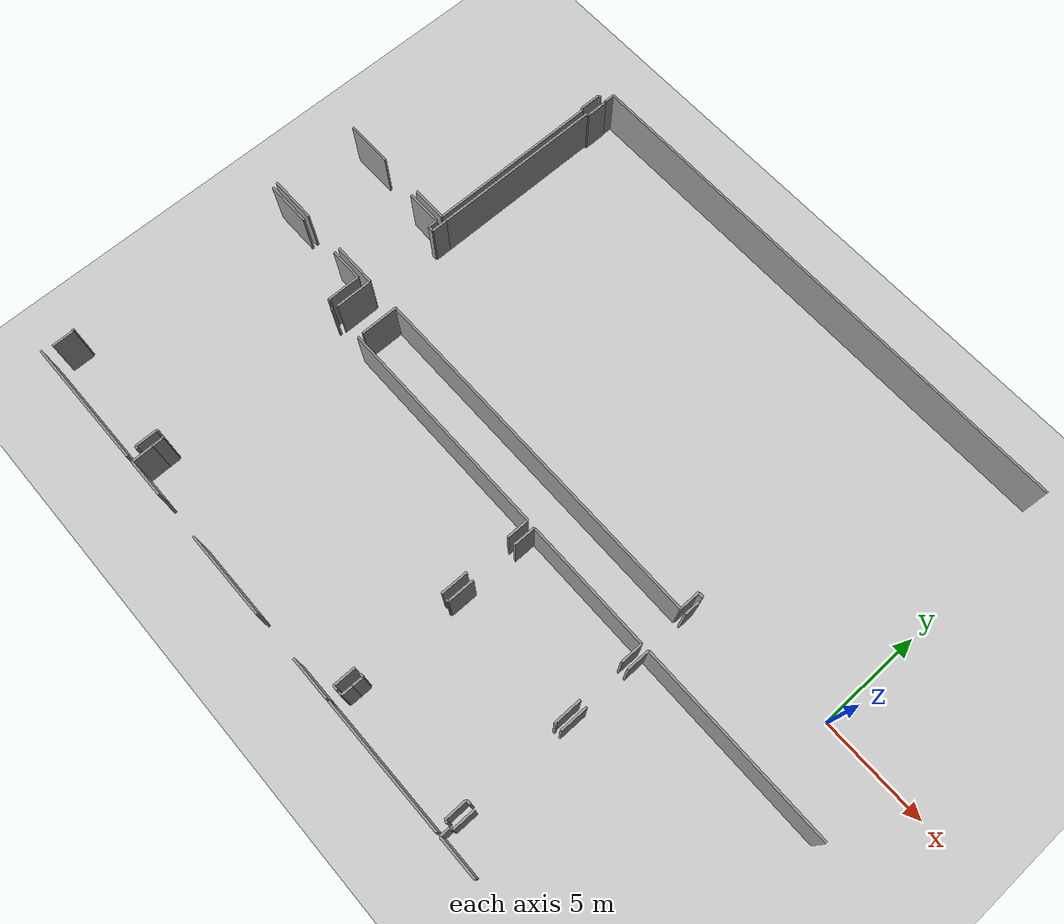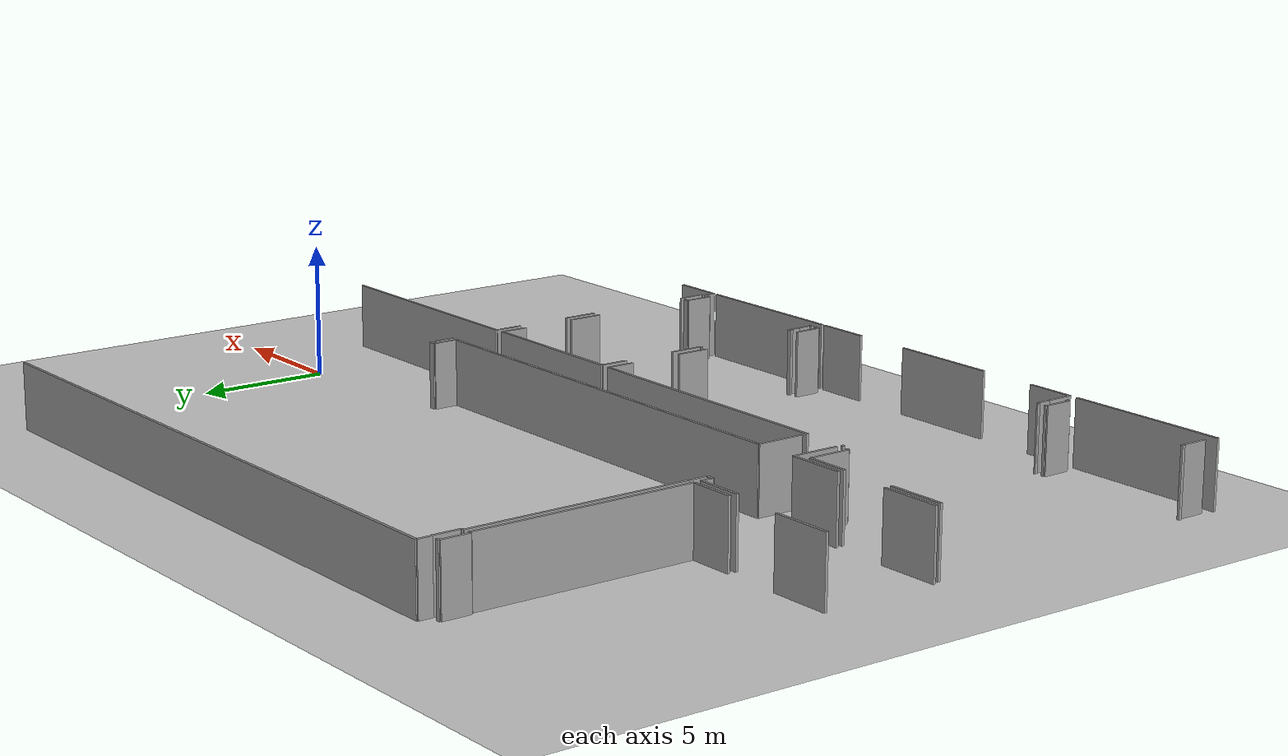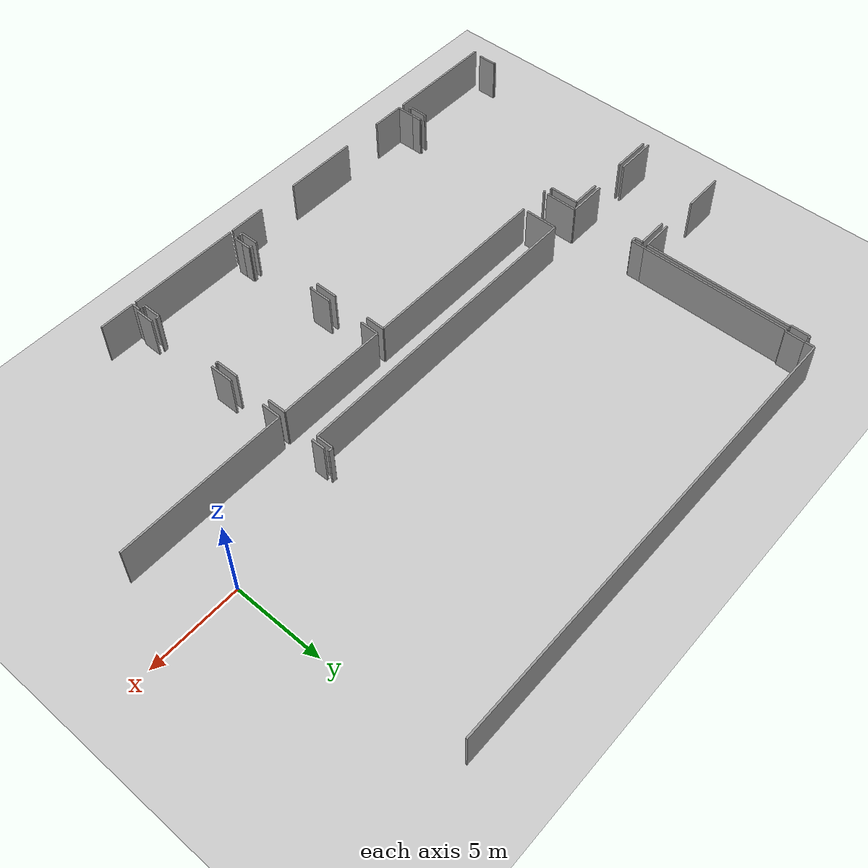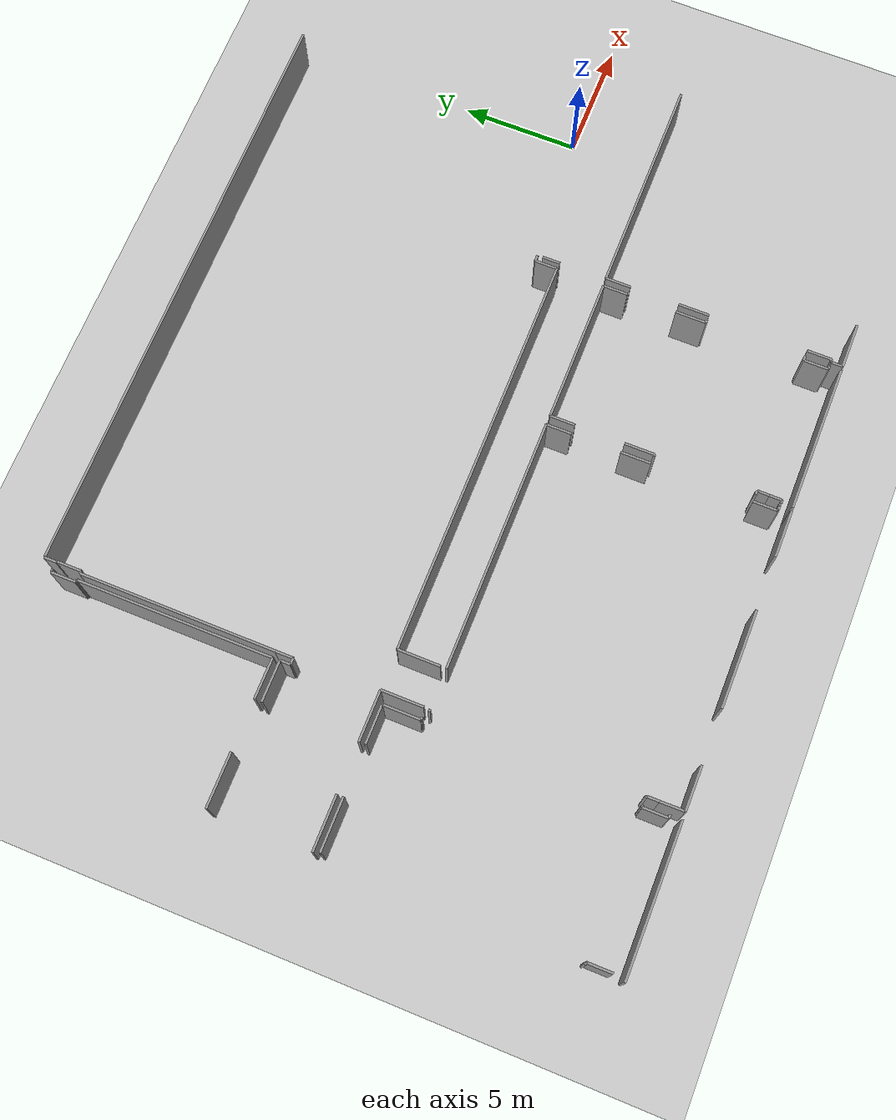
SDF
<sdf version="1.6">
 <world name="default">
  <model name="ground_plane">
   <static>1</static>
   <link name="link">
    <collision name="collision">
     <geometry><plane><normal>0 0 1</normal><size>100 100</size></plane></geometry>
     <surface><friction><ode><mu>100</mu><mu2>50</mu2></ode></friction></surface>
    </collision>
    <visual name="visual">
     <cast_shadows>0</cast_shadows>
     <geometry><plane><normal>0 0 1</normal><size>100 100</size></plane></geometry>
     <material>
      <script><uri>file://media/materials/scripts/gazebo.material</uri><name>Gazebo/Grey</name></script>
     </material>
    </visual>
   </link>
  </model>
  <model name="0510040942_A-40">
   <static>1</static>
   <link name="Wall_59">
    <collision name="Wall_59_Collision">
     <geometry><box><size>0.143116332771 0.1 2.5</size></box></geometry>
     <pose>0.0715581663854 0 1.25 0 0 0</pose>
    </collision>
    <visual name="Wall_59_Visual">
     <pose>0.0715581663854 0 1.25 0 0 0</pose>
     <geometry><box><size>0.143116332771 0.1 2.5</size></box></geometry>
     <material>
      <script><uri>file://media/materials/scripts/gazebo.material</uri><name>Gazebo/Grey</name></script>
      <ambient>1 1 1 1</ambient>
     </material>
    </visual>
    <pose>32.2800918584 -0.519050458657 0 0 0 3.14159265359</pose>
   </link>
   <link name="Wall_60">
    <collision name="Wall_60_Collision">
     <geometry><box><size>1.07705190505 0.1 2.5</size></box></geometry>
     <pose>0.538525952523 0 1.25 0 0 0</pose>
    </collision>
    <visual name="Wall_60_Visual">
     <pose>0.538525952523 0 1.25 0 0 0</pose>
     <geometry><box><size>1.07705190505 0.1 2.5</size></box></geometry>
     <material>
      <script><uri>file://media/materials/scripts/gazebo.material</uri><name>Gazebo/Grey</name></script>
      <ambient>1 1 1 1</ambient>
     </material>
    </visual>
    <pose>32.1369755256 -0.519050458657 0 0 0 -1.57079632679</pose>
   </link>
   <link name="Wall_61">
    <collision name="Wall_61_Collision">
     <geometry><box><size>0.0955377646954 0.1 2.5</size></box></geometry>
     <pose>0.0477688823477 0 1.25 0 0 0</pose>
    </collision>
    <visual name="Wall_61_Visual">
     <pose>0.0477688823477 0 1.25 0 0 0</pose>
     <geometry><box><size>0.0955377646954 0.1 2.5</size></box></geometry>
     <material>
      <script><uri>file://media/materials/scripts/gazebo.material</uri><name>Gazebo/Grey</name></script>
      <ambient>1 1 1 1</ambient>
     </material>
    </visual>
    <pose>32.1369755256 -1.5961023637 0 0 0 0.0</pose>
   </link>
   <link name="Wall_62">
    <collision name="Wall_62_Collision">
     <geometry><box><size>8.37141733382 0.1 2.5</size></box></geometry>
     <pose>4.18570866691 0 1.25 0 0 0</pose>
    </collision>
    <visual name="Wall_62_Visual">
     <pose>4.18570866691 0 1.25 0 0 0</pose>
     <geometry><box><size>8.37141733382 0.1 2.5</size></box></geometry>
     <material>
      <script><uri>file://media/materials/scripts/gazebo.material</uri><name>Gazebo/Grey</name></script>
      <ambient>1 1 1 1</ambient>
     </material>
    </visual>
    <pose>32.2325132903 -1.5961023637 0 0 0 -1.57079632679</pose>
   </link>
   <link name="Wall_63">
    <collision name="Wall_63_Collision">
     <geometry><box><size>1.72868797341 0.1 2.5</size></box></geometry>
     <pose>0.864343986703 0 1.25 0 0 0</pose>
    </collision>
    <visual name="Wall_63_Visual">
     <pose>0.864343986703 0 1.25 0 0 0</pose>
     <geometry><box><size>1.72868797341 0.1 2.5</size></box></geometry>
     <material>
      <script><uri>file://media/materials/scripts/gazebo.material</uri><name>Gazebo/Grey</name></script>
      <ambient>1 1 1 1</ambient>
     </material>
    </visual>
    <pose>32.2325132903 -9.96751969753 0 0 0 3.14159265359</pose>
   </link>
   <link name="Wall_64">
    <collision name="Wall_64_Collision">
     <geometry><box><size>2.30470618681 0.1 2.5</size></box></geometry>
     <pose>1.1523530934 0 1.25 0 0 0</pose>
    </collision>
    <visual name="Wall_64_Visual">
     <pose>1.1523530934 0 1.25 0 0 0</pose>
     <geometry><box><size>2.30470618681 0.1 2.5</size></box></geometry>
     <material>
      <script><uri>file://media/materials/scripts/gazebo.material</uri><name>Gazebo/Grey</name></script>
      <ambient>1 1 1 1</ambient>
     </material>
    </visual>
    <pose>28.3348769935 -9.96751969753 0 0 0 -3.14104214442</pose>
   </link>
   <link name="Wall_65">
    <collision name="Wall_65_Collision">
     <geometry><box><size>8.36672291511 0.1 2.5</size></box></geometry>
     <pose>4.18336145755 0 1.25 0 0 0</pose>
    </collision>
    <visual name="Wall_65_Visual">
     <pose>4.18336145755 0 1.25 0 0 0</pose>
     <geometry><box><size>8.36672291511 0.1 2.5</size></box></geometry>
     <material>
      <script><uri>file://media/materials/scripts/gazebo.material</uri><name>Gazebo/Grey</name></script>
      <ambient>1 1 1 1</ambient>
     </material>
    </visual>
    <pose>32.51329028 -9.96384028826 0 0 0 1.57079632679</pose>
   </link>
   <link name="Wall_66">
    <collision name="Wall_66_Collision">
     <geometry><box><size>0.102389078498 0.1 2.5</size></box></geometry>
     <pose>0.0511945392491 0 1.25 0 0 0</pose>
    </collision>
    <visual name="Wall_66_Visual">
     <pose>0.0511945392491 0 1.25 0 0 0</pose>
     <geometry><box><size>0.102389078498 0.1 2.5</size></box></geometry>
     <material>
      <script><uri>file://media/materials/scripts/gazebo.material</uri><name>Gazebo/Grey</name></script>
      <ambient>1 1 1 1</ambient>
     </material>
    </visual>
    <pose>32.51329028 -1.59711737316 0 0 0 0.0</pose>
   </link>
   <link name="Wall_67">
    <collision name="Wall_67_Collision">
     <geometry><box><size>1.05319918292 0.1 2.5</size></box></geometry>
     <pose>0.526599591459 0 1.25 0 0 0</pose>
    </collision>
    <visual name="Wall_67_Visual">
     <pose>0.526599591459 0 1.25 0 0 0</pose>
     <geometry><box><size>1.05319918292 0.1 2.5</size></box></geometry>
     <material>
      <script><uri>file://media/materials/scripts/gazebo.material</uri><name>Gazebo/Grey</name></script>
      <ambient>1 1 1 1</ambient>
     </material>
    </visual>
    <pose>32.6156793585 -1.59711737316 0 0 0 1.57079632679</pose>
   </link>
   <link name="Wall_68">
    <collision name="Wall_68_Collision">
     <geometry><box><size>0.0312115406575 0.1 2.5</size></box></geometry>
     <pose>0.0156057703287 0 1.25 0 0 0</pose>
    </collision>
    <visual name="Wall_68_Visual">
     <pose>0.0156057703287 0 1.25 0 0 0</pose>
     <geometry><box><size>0.0312115406575 0.1 2.5</size></box></geometry>
     <material>
      <script><uri>file://media/materials/scripts/gazebo.material</uri><name>Gazebo/Grey</name></script>
      <ambient>1 1 1 1</ambient>
     </material>
    </visual>
    <pose>32.6156793585 -0.543918190238 0 0 0 3.14159265359</pose>
   </link>
   <link name="Wall_69">
    <collision name="Wall_69_Collision">
     <geometry><box><size>0.531738076811 0.1 2.5</size></box></geometry>
     <pose>0.265869038405 0 1.25 0 0 0</pose>
    </collision>
    <visual name="Wall_69_Visual">
     <pose>0.265869038405 0 1.25 0 0 0</pose>
     <geometry><box><size>0.531738076811 0.1 2.5</size></box></geometry>
     <material>
      <script><uri>file://media/materials/scripts/gazebo.material</uri><name>Gazebo/Grey</name></script>
      <ambient>1 1 1 1</ambient>
     </material>
    </visual>
    <pose>32.5844678179 -0.543918190238 0 0 0 1.57079632679</pose>
   </link>
   <link name="Wall_70">
    <collision name="Wall_70_Collision">
     <geometry><box><size>25.5397947143 0.1 2.5</size></box></geometry>
     <pose>12.7698973572 0 1.25 0 0 0</pose>
    </collision>
    <visual name="Wall_70_Visual">
     <pose>12.7698973572 0 1.25 0 0 0</pose>
     <geometry><box><size>25.5397947143 0.1 2.5</size></box></geometry>
     <material>
      <script><uri>file://media/materials/scripts/gazebo.material</uri><name>Gazebo/Grey</name></script>
      <ambient>1 1 1 1</ambient>
     </material>
    </visual>
    <pose>32.5844678179 -0.0121801134273 0 0 0 0.0</pose>
   </link>
   <link name="Wall_78">
    <collision name="Wall_78_Collision">
     <geometry><box><size>0.258573657967 0.1 2.5</size></box></geometry>
     <pose>0.129286828984 0 1.25 0 0 0</pose>
    </collision>
    <visual name="Wall_78_Visual">
     <pose>0.129286828984 0 1.25 0 0 0</pose>
     <geometry><box><size>0.258573657967 0.1 2.5</size></box></geometry>
     <material>
      <script><uri>file://media/materials/scripts/gazebo.material</uri><name>Gazebo/Grey</name></script>
      <ambient>1 1 1 1</ambient>
     </material>
    </visual>
    <pose>51.9834553459 -13.3354479364 0 0 0 3.14159265359</pose>
   </link>
   <link name="Wall_79">
    <collision name="Wall_79_Collision">
     <geometry><box><size>0.966796503292 0.1 2.5</size></box></geometry>
     <pose>0.483398251646 0 1.25 0 0 0</pose>
    </collision>
    <visual name="Wall_79_Visual">
     <pose>0.483398251646 0 1.25 0 0 0</pose>
     <geometry><box><size>0.966796503292 0.1 2.5</size></box></geometry>
     <material>
      <script><uri>file://media/materials/scripts/gazebo.material</uri><name>Gazebo/Grey</name></script>
      <ambient>1 1 1 1</ambient>
     </material>
    </visual>
    <pose>51.724881688 -13.3354479364 0 0 0 -1.57079632679</pose>
   </link>
   <link name="Wall_80">
    <collision name="Wall_80_Collision">
     <geometry><box><size>17.3984038976 0.1 2.5</size></box></geometry>
     <pose>8.69920194882 0 1.25 0 0 0</pose>
    </collision>
    <visual name="Wall_80_Visual">
     <pose>8.69920194882 0 1.25 0 0 0</pose>
     <geometry><box><size>17.3984038976 0.1 2.5</size></box></geometry>
     <material>
      <script><uri>file://media/materials/scripts/gazebo.material</uri><name>Gazebo/Grey</name></script>
      <ambient>1 1 1 1</ambient>
     </material>
    </visual>
    <pose>51.724881688 -14.3022444397 0 0 0 3.14159265359</pose>
   </link>
   <link name="Wall_81">
    <collision name="Wall_81_Collision">
     <geometry><box><size>1.80836621541 0.1 2.5</size></box></geometry>
     <pose>0.904183107705 0 1.25 0 0 0</pose>
    </collision>
    <visual name="Wall_81_Visual">
     <pose>0.904183107705 0 1.25 0 0 0</pose>
     <geometry><box><size>1.80836621541 0.1 2.5</size></box></geometry>
     <material>
      <script><uri>file://media/materials/scripts/gazebo.material</uri><name>Gazebo/Grey</name></script>
      <ambient>1 1 1 1</ambient>
     </material>
    </visual>
    <pose>34.3264777903 -14.3022444397 0 0 0 -1.57079632679</pose>
   </link>
   <link name="Wall_82">
    <collision name="Wall_82_Collision">
     <geometry><box><size>1.80011926361 0.1 2.5</size></box></geometry>
     <pose>0.900059631805 0 1.25 0 0 0</pose>
    </collision>
    <visual name="Wall_82_Visual">
     <pose>0.900059631805 0 1.25 0 0 0</pose>
     <geometry><box><size>1.80011926361 0.1 2.5</size></box></geometry>
     <material>
      <script><uri>file://media/materials/scripts/gazebo.material</uri><name>Gazebo/Grey</name></script>
      <ambient>1 1 1 1</ambient>
     </material>
    </visual>
    <pose>32.6211350343 -16.1106106551 0 0 0 1.57079632679</pose>
   </link>
   <link name="Wall_83">
    <collision name="Wall_83_Collision">
     <geometry><box><size>2.15511881954 0.1 2.5</size></box></geometry>
     <pose>1.07755940977 0 1.25 0 0 0</pose>
    </collision>
    <visual name="Wall_83_Visual">
     <pose>1.07755940977 0 1.25 0 0 0</pose>
     <geometry><box><size>2.15511881954 0.1 2.5</size></box></geometry>
     <material>
      <script><uri>file://media/materials/scripts/gazebo.material</uri><name>Gazebo/Grey</name></script>
      <ambient>1 1 1 1</ambient>
     </material>
    </visual>
    <pose>32.6211350343 -14.3104913915 0 0 0 3.14159265359</pose>
   </link>
   <link name="Wall_84">
    <collision name="Wall_84_Collision">
     <geometry><box><size>2.3148559321 0.1 2.5</size></box></geometry>
     <pose>1.15742796605 0 1.25 0 0 0</pose>
    </collision>
    <visual name="Wall_84_Visual">
     <pose>1.15742796605 0 1.25 0 0 0</pose>
     <geometry><box><size>2.3148559321 0.1 2.5</size></box></geometry>
     <material>
      <script><uri>file://media/materials/scripts/gazebo.material</uri><name>Gazebo/Grey</name></script>
      <ambient>1 1 1 1</ambient>
     </material>
    </visual>
    <pose>28.3481989926 -14.3104913915 0 0 0 3.14159265359</pose>
   </link>
   <link name="Wall_88">
    <collision name="Wall_88_Collision">
     <geometry><box><size>1.74822690536 0.1 2.5</size></box></geometry>
     <pose>0.874113452682 0 1.25 0 0 0</pose>
    </collision>
    <visual name="Wall_88_Visual">
     <pose>0.874113452682 0 1.25 0 0 0</pose>
     <geometry><box><size>1.74822690536 0.1 2.5</size></box></geometry>
     <material>
      <script><uri>file://media/materials/scripts/gazebo.material</uri><name>Gazebo/Grey</name></script>
      <ambient>1 1 1 1</ambient>
     </material>
    </visual>
    <pose>30.4965933745 -10.2661862289 0 0 0 0.0</pose>
   </link>
   <link name="Wall_89">
    <collision name="Wall_89_Collision">
     <geometry><box><size>0.44482789246 0.1 2.5</size></box></geometry>
     <pose>0.22241394623 0 1.25 0 0 0</pose>
    </collision>
    <visual name="Wall_89_Visual">
     <pose>0.22241394623 0 1.25 0 0 0</pose>
     <geometry><box><size>0.44482789246 0.1 2.5</size></box></geometry>
     <material>
      <script><uri>file://media/materials/scripts/gazebo.material</uri><name>Gazebo/Grey</name></script>
      <ambient>1 1 1 1</ambient>
     </material>
    </visual>
    <pose>32.2448202799 -10.2661862289 0 0 0 -1.57079632679</pose>
   </link>
   <link name="Wall_90">
    <collision name="Wall_90_Collision">
     <geometry><box><size>0.268470000127 0.1 2.5</size></box></geometry>
     <pose>0.134235000063 0 1.25 0 0 0</pose>
    </collision>
    <visual name="Wall_90_Visual">
     <pose>0.134235000063 0 1.25 0 0 0</pose>
     <geometry><box><size>0.268470000127 0.1 2.5</size></box></geometry>
     <material>
      <script><uri>file://media/materials/scripts/gazebo.material</uri><name>Gazebo/Grey</name></script>
      <ambient>1 1 1 1</ambient>
     </material>
    </visual>
    <pose>32.2448202799 -10.7110141213 0 0 0 0.0</pose>
   </link>
   <link name="Wall_91">
    <collision name="Wall_91_Collision">
     <geometry><box><size>0.747173833056 0.1 2.5</size></box></geometry>
     <pose>0.373586916528 0 1.25 0 0 0</pose>
    </collision>
    <visual name="Wall_91_Visual">
     <pose>0.373586916528 0 1.25 0 0 0</pose>
     <geometry><box><size>0.747173833056 0.1 2.5</size></box></geometry>
     <material>
      <script><uri>file://media/materials/scripts/gazebo.material</uri><name>Gazebo/Grey</name></script>
      <ambient>1 1 1 1</ambient>
     </material>
    </visual>
    <pose>32.51329028 -10.7110141213 0 0 0 1.57079632679</pose>
   </link>
   <link name="Wall_95">
    <collision name="Wall_95_Collision">
     <geometry><box><size>2.22845325247 0.1 2.5</size></box></geometry>
     <pose>1.11422662624 0 1.25 0 0 0</pose>
    </collision>
    <visual name="Wall_95_Visual">
     <pose>1.11422662624 0 1.25 0 0 0</pose>
     <geometry><box><size>2.22845325247 0.1 2.5</size></box></geometry>
     <material>
      <script><uri>file://media/materials/scripts/gazebo.material</uri><name>Gazebo/Grey</name></script>
      <ambient>1 1 1 1</ambient>
     </material>
    </visual>
    <pose>26.1260895492 -14.5798495248 0 0 0 0.0</pose>
   </link>
   <link name="Wall_96">
    <collision name="Wall_96_Collision">
     <geometry><box><size>1.6401283987 0.1 2.5</size></box></geometry>
     <pose>0.820064199348 0 1.25 0 0 0</pose>
    </collision>
    <visual name="Wall_96_Visual">
     <pose>0.820064199348 0 1.25 0 0 0</pose>
     <geometry><box><size>1.6401283987 0.1 2.5</size></box></geometry>
     <material>
      <script><uri>file://media/materials/scripts/gazebo.material</uri><name>Gazebo/Grey</name></script>
      <ambient>1 1 1 1</ambient>
     </material>
    </visual>
    <pose>30.4849207658 -14.5798495248 0 0 0 0.0</pose>
   </link>
   <link name="Wall_97">
    <collision name="Wall_97_Collision">
     <geometry><box><size>1.60561807732 0.1 2.5</size></box></geometry>
     <pose>0.802809038659 0 1.25 0 0 0</pose>
    </collision>
    <visual name="Wall_97_Visual">
     <pose>0.802809038659 0 1.25 0 0 0</pose>
     <geometry><box><size>1.60561807732 0.1 2.5</size></box></geometry>
     <material>
      <script><uri>file://media/materials/scripts/gazebo.material</uri><name>Gazebo/Grey</name></script>
      <ambient>1 1 1 1</ambient>
     </material>
    </visual>
    <pose>32.1250491645 -14.5798495248 0 0 0 -1.57079632679</pose>
   </link>
   <link name="Wall_98">
    <collision name="Wall_98_Collision">
     <geometry><box><size>0.112158544476 0.1 2.5</size></box></geometry>
     <pose>0.0560792722382 0 1.25 0 0 0</pose>
    </collision>
    <visual name="Wall_98_Visual">
     <pose>0.0560792722382 0 1.25 0 0 0</pose>
     <geometry><box><size>0.112158544476 0.1 2.5</size></box></geometry>
     <material>
      <script><uri>file://media/materials/scripts/gazebo.material</uri><name>Gazebo/Grey</name></script>
      <ambient>1 1 1 1</ambient>
     </material>
    </visual>
    <pose>32.1250491645 -16.1854676022 0 0 0 0.0</pose>
   </link>
   <link name="Wall_99">
    <collision name="Wall_99_Collision">
     <geometry><box><size>0.0936346219724 0.1 2.5</size></box></geometry>
     <pose>0.0468173109862 0 1.25 0 0 0</pose>
    </collision>
    <visual name="Wall_99_Visual">
     <pose>0.0468173109862 0 1.25 0 0 0</pose>
     <geometry><box><size>0.0936346219724 0.1 2.5</size></box></geometry>
     <material>
      <script><uri>file://media/materials/scripts/gazebo.material</uri><name>Gazebo/Grey</name></script>
      <ambient>1 1 1 1</ambient>
     </material>
    </visual>
    <pose>32.237207709 -25.1312534098 0 0 0 3.14159265359</pose>
   </link>
   <link name="Wall_100">
    <collision name="Wall_100_Collision">
     <geometry><box><size>1.07299186724 0.1 2.5</size></box></geometry>
     <pose>0.536495933618 0 1.25 0 0 0</pose>
    </collision>
    <visual name="Wall_100_Visual">
     <pose>0.536495933618 0 1.25 0 0 0</pose>
     <geometry><box><size>1.07299186724 0.1 2.5</size></box></geometry>
     <material>
      <script><uri>file://media/materials/scripts/gazebo.material</uri><name>Gazebo/Grey</name></script>
      <ambient>1 1 1 1</ambient>
     </material>
    </visual>
    <pose>32.143573087 -25.1312534098 0 0 0 -1.57079632679</pose>
   </link>
   <link name="Wall_101">
    <collision name="Wall_101_Collision">
     <geometry><box><size>0.136518771331 0.1 2.5</size></box></geometry>
     <pose>0.0682593856655 0 1.25 0 0 0</pose>
    </collision>
    <visual name="Wall_101_Visual">
     <pose>0.0682593856655 0 1.25 0 0 0</pose>
     <geometry><box><size>0.136518771331 0.1 2.5</size></box></geometry>
     <material>
      <script><uri>file://media/materials/scripts/gazebo.material</uri><name>Gazebo/Grey</name></script>
      <ambient>1 1 1 1</ambient>
     </material>
    </visual>
    <pose>32.143573087 -26.204245277 0 0 0 0.0</pose>
   </link>
   <link name="Wall_102">
    <collision name="Wall_102_Collision">
     <geometry><box><size>6.30701498408 0.1 2.5</size></box></geometry>
     <pose>3.15350749204 0 1.25 0 0 0</pose>
    </collision>
    <visual name="Wall_102_Visual">
     <pose>3.15350749204 0 1.25 0 0 0</pose>
     <geometry><box><size>6.30701498408 0.1 2.5</size></box></geometry>
     <material>
      <script><uri>file://media/materials/scripts/gazebo.material</uri><name>Gazebo/Grey</name></script>
      <ambient>1 1 1 1</ambient>
     </material>
    </visual>
    <pose>32.2800918584 -26.6955098519 0 0 0 3.14159265359</pose>
   </link>
   <link name="Wall_105">
    <collision name="Wall_105_Collision">
     <geometry><box><size>1.0684243247 0.1 2.5</size></box></geometry>
     <pose>0.534212162351 0 1.25 0 0 0</pose>
    </collision>
    <visual name="Wall_105_Visual">
     <pose>0.534212162351 0 1.25 0 0 0</pose>
     <geometry><box><size>1.0684243247 0.1 2.5</size></box></geometry>
     <material>
      <script><uri>file://media/materials/scripts/gazebo.material</uri><name>Gazebo/Grey</name></script>
      <ambient>1 1 1 1</ambient>
     </material>
    </visual>
    <pose>26.1265970539 -26.2037377723 0 0 0 1.57079632679</pose>
   </link>
   <link name="Wall_106">
    <collision name="Wall_106_Collision">
     <geometry><box><size>0.0957380629047 0.1 2.5</size></box></geometry>
     <pose>0.0478690314524 0 1.25 0 0 0</pose>
    </collision>
    <visual name="Wall_106_Visual">
     <pose>0.0478690314524 0 1.25 0 0 0</pose>
     <geometry><box><size>0.0957380629047 0.1 2.5</size></box></geometry>
     <material>
      <script><uri>file://media/materials/scripts/gazebo.material</uri><name>Gazebo/Grey</name></script>
      <ambient>1 1 1 1</ambient>
     </material>
    </visual>
    <pose>26.1265970539 -25.1353134476 0 0 0 3.03137447819</pose>
   </link>
   <link name="Wall_107">
    <collision name="Wall_107_Collision">
     <geometry><box><size>0.536178743165 0.1 2.5</size></box></geometry>
     <pose>0.268089371582 0 1.25 0 0 0</pose>
    </collision>
    <visual name="Wall_107_Visual">
     <pose>0.268089371582 0 1.25 0 0 0</pose>
     <geometry><box><size>0.536178743165 0.1 2.5</size></box></geometry>
     <material>
      <script><uri>file://media/materials/scripts/gazebo.material</uri><name>Gazebo/Grey</name></script>
      <ambient>1 1 1 1</ambient>
     </material>
    </visual>
    <pose>32.5918266364 -25.6673052768 0 0 0 1.57079632679</pose>
   </link>
   <link name="Wall_108">
    <collision name="Wall_108_Collision">
     <geometry><box><size>0.0694012712993 0.1 2.5</size></box></geometry>
     <pose>0.0347006356497 0 1.25 0 0 0</pose>
    </collision>
    <visual name="Wall_108_Visual">
     <pose>0.0347006356497 0 1.25 0 0 0</pose>
     <geometry><box><size>0.0694012712993 0.1 2.5</size></box></geometry>
     <material>
      <script><uri>file://media/materials/scripts/gazebo.material</uri><name>Gazebo/Grey</name></script>
      <ambient>1 1 1 1</ambient>
     </material>
    </visual>
    <pose>32.5918266364 -25.1311265336 0 0 0 3.14159265359</pose>
   </link>
   <link name="Wall_109">
    <collision name="Wall_109_Collision">
     <geometry><box><size>0.110636030298 0.1 2.5</size></box></geometry>
     <pose>0.055318015149 0 1.25 0 0 0</pose>
    </collision>
    <visual name="Wall_109_Visual">
     <pose>0.055318015149 0 1.25 0 0 0</pose>
     <geometry><box><size>0.110636030298 0.1 2.5</size></box></geometry>
     <material>
      <script><uri>file://media/materials/scripts/gazebo.material</uri><name>Gazebo/Grey</name></script>
      <ambient>1 1 1 1</ambient>
     </material>
    </visual>
    <pose>32.5224253651 -16.3498991334 0 0 0 0.0</pose>
   </link>
   <link name="Wall_110">
    <collision name="Wall_110_Collision">
     <geometry><box><size>10.792595506 0.1 2.5</size></box></geometry>
     <pose>5.39629775302 0 1.25 0 0 0</pose>
    </collision>
    <visual name="Wall_110_Visual">
     <pose>5.39629775302 0 1.25 0 0 0</pose>
     <geometry><box><size>10.792595506 0.1 2.5</size></box></geometry>
     <material>
      <script><uri>file://media/materials/scripts/gazebo.material</uri><name>Gazebo/Grey</name></script>
      <ambient>1 1 1 1</ambient>
     </material>
    </visual>
    <pose>34.3139170484 -16.3498991334 0 0 0 0.0</pose>
   </link>
   <link name="Wall_111">
    <collision name="Wall_111_Collision">
     <geometry><box><size>1.07844754304 0.1 2.5</size></box></geometry>
     <pose>0.539223771521 0 1.25 0 0 0</pose>
    </collision>
    <visual name="Wall_111_Visual">
     <pose>0.539223771521 0 1.25 0 0 0</pose>
     <geometry><box><size>1.07844754304 0.1 2.5</size></box></geometry>
     <material>
      <script><uri>file://media/materials/scripts/gazebo.material</uri><name>Gazebo/Grey</name></script>
      <ambient>1 1 1 1</ambient>
     </material>
    </visual>
    <pose>45.1065125544 -16.3498991334 0 0 0 -1.57079632679</pose>
   </link>
   <link name="Wall_112">
    <collision name="Wall_112_Collision">
     <geometry><box><size>1.29121889948 0.1 2.5</size></box></geometry>
     <pose>0.645609449738 0 1.25 0 0 0</pose>
    </collision>
    <visual name="Wall_112_Visual">
     <pose>0.645609449738 0 1.25 0 0 0</pose>
     <geometry><box><size>1.29121889948 0.1 2.5</size></box></geometry>
     <material>
      <script><uri>file://media/materials/scripts/gazebo.material</uri><name>Gazebo/Grey</name></script>
      <ambient>1 1 1 1</ambient>
     </material>
    </visual>
    <pose>45.1065125544 -19.5466714034 0 0 0 -1.57079632679</pose>
   </link>
   <link name="Wall_113">
    <collision name="Wall_113_Collision">
     <geometry><box><size>1.04279533603 0.1 2.5</size></box></geometry>
     <pose>0.521397668016 0 1.25 0 0 0</pose>
    </collision>
    <visual name="Wall_113_Visual">
     <pose>0.521397668016 0 1.25 0 0 0</pose>
     <geometry><box><size>1.04279533603 0.1 2.5</size></box></geometry>
     <material>
      <script><uri>file://media/materials/scripts/gazebo.material</uri><name>Gazebo/Grey</name></script>
      <ambient>1 1 1 1</ambient>
     </material>
    </visual>
    <pose>45.1065125544 -25.1472398087 0 0 0 -1.57079632679</pose>
   </link>
   <link name="Wall_114">
    <collision name="Wall_114_Collision">
     <geometry><box><size>0.203128766637 0.1 2.5</size></box></geometry>
     <pose>0.101564383318 0 1.25 0 0 0</pose>
    </collision>
    <visual name="Wall_114_Visual">
     <pose>0.101564383318 0 1.25 0 0 0</pose>
     <geometry><box><size>0.203128766637 0.1 2.5</size></box></geometry>
     <material>
      <script><uri>file://media/materials/scripts/gazebo.material</uri><name>Gazebo/Grey</name></script>
      <ambient>1 1 1 1</ambient>
     </material>
    </visual>
    <pose>45.1065125544 -26.1900351447 0 0 0 0.0</pose>
   </link>
   <link name="Wall_115">
    <collision name="Wall_115_Collision">
     <geometry><box><size>2.04625905579 0.1 2.5</size></box></geometry>
     <pose>1.02312952789 0 1.25 0 0 0</pose>
    </collision>
    <visual name="Wall_115_Visual">
     <pose>1.02312952789 0 1.25 0 0 0</pose>
     <geometry><box><size>2.04625905579 0.1 2.5</size></box></geometry>
     <material>
      <script><uri>file://media/materials/scripts/gazebo.material</uri><name>Gazebo/Grey</name></script>
      <ambient>1 1 1 1</ambient>
     </material>
    </visual>
    <pose>45.309641321 -26.6944948425 0 0 0 3.14159265359</pose>
   </link>
   <link name="Wall_116">
    <collision name="Wall_116_Collision">
     <geometry><box><size>4.1754951343 0.1 2.5</size></box></geometry>
     <pose>2.08774756715 0 1.25 0 0 0</pose>
    </collision>
    <visual name="Wall_116_Visual">
     <pose>2.08774756715 0 1.25 0 0 0</pose>
     <geometry><box><size>4.1754951343 0.1 2.5</size></box></geometry>
     <material>
      <script><uri>file://media/materials/scripts/gazebo.material</uri><name>Gazebo/Grey</name></script>
      <ambient>1 1 1 1</ambient>
     </material>
    </visual>
    <pose>40.956138904 -26.6944948425 0 0 0 3.14159265359</pose>
   </link>
   <link name="Wall_117">
    <collision name="Wall_117_Collision">
     <geometry><box><size>1.86025857366 0.1 2.5</size></box></geometry>
     <pose>0.930129286829 0 1.25 0 0 0</pose>
    </collision>
    <visual name="Wall_117_Visual">
     <pose>0.930129286829 0 1.25 0 0 0</pose>
     <geometry><box><size>1.86025857366 0.1 2.5</size></box></geometry>
     <material>
      <script><uri>file://media/materials/scripts/gazebo.material</uri><name>Gazebo/Grey</name></script>
      <ambient>1 1 1 1</ambient>
     </material>
    </visual>
    <pose>34.4662953424 -26.6944948425 0 0 0 3.14159265359</pose>
   </link>
   <link name="Wall_118">
    <collision name="Wall_118_Collision">
     <geometry><box><size>1.02728785243 0.1 2.5</size></box></geometry>
     <pose>0.513643926215 0 1.25 0 0 0</pose>
    </collision>
    <visual name="Wall_118_Visual">
     <pose>0.513643926215 0 1.25 0 0 0</pose>
     <geometry><box><size>1.02728785243 0.1 2.5</size></box></geometry>
     <material>
      <script><uri>file://media/materials/scripts/gazebo.material</uri><name>Gazebo/Grey</name></script>
      <ambient>1 1 1 1</ambient>
     </material>
    </visual>
    <pose>32.6060367687 -26.6944948425 0 0 0 1.58462943648</pose>
   </link>
   <link name="Wall_119">
    <collision name="Wall_119_Collision">
     <geometry><box><size>0.514356039941 0.1 2.5</size></box></geometry>
     <pose>0.25717801997 0 1.25 0 0 0</pose>
    </collision>
    <visual name="Wall_119_Visual">
     <pose>0.25717801997 0 1.25 0 0 0</pose>
     <geometry><box><size>0.514356039941 0.1 2.5</size></box></geometry>
     <material>
      <script><uri>file://media/materials/scripts/gazebo.material</uri><name>Gazebo/Grey</name></script>
      <ambient>1 1 1 1</ambient>
     </material>
    </visual>
    <pose>45.584962635 -25.6643871246 0 0 0 1.57079632679</pose>
   </link>
   <link name="Wall_120">
    <collision name="Wall_120_Collision">
     <geometry><box><size>0.173820368702 0.1 2.5</size></box></geometry>
     <pose>0.0869101843511 0 1.25 0 0 0</pose>
    </collision>
    <visual name="Wall_120_Visual">
     <pose>0.0869101843511 0 1.25 0 0 0</pose>
     <geometry><box><size>0.173820368702 0.1 2.5</size></box></geometry>
     <material>
      <script><uri>file://media/materials/scripts/gazebo.material</uri><name>Gazebo/Grey</name></script>
      <ambient>1 1 1 1</ambient>
     </material>
    </visual>
    <pose>45.584962635 -25.1500310847 0 0 0 3.14159265359</pose>
   </link>
   <link name="Wall_121">
    <collision name="Wall_121_Collision">
     <geometry><box><size>0.100232183412 0.1 2.5</size></box></geometry>
     <pose>0.0501160917061 0 1.25 0 0 0</pose>
    </collision>
    <visual name="Wall_121_Visual">
     <pose>0.0501160917061 0 1.25 0 0 0</pose>
     <geometry><box><size>0.100232183412 0.1 2.5</size></box></geometry>
     <material>
      <script><uri>file://media/materials/scripts/gazebo.material</uri><name>Gazebo/Grey</name></script>
      <ambient>1 1 1 1</ambient>
     </material>
    </visual>
    <pose>45.4111422663 -20.8508316734 0 0 0 0.0</pose>
   </link>
   <link name="Wall_122">
    <collision name="Wall_122_Collision">
     <geometry><box><size>1.2896963853 0.1 2.5</size></box></geometry>
     <pose>0.644848192649 0 1.25 0 0 0</pose>
    </collision>
    <visual name="Wall_122_Visual">
     <pose>0.644848192649 0 1.25 0 0 0</pose>
     <geometry><box><size>1.2896963853 0.1 2.5</size></box></geometry>
     <material>
      <script><uri>file://media/materials/scripts/gazebo.material</uri><name>Gazebo/Grey</name></script>
      <ambient>1 1 1 1</ambient>
     </material>
    </visual>
    <pose>45.5113744497 -20.8508316734 0 0 0 1.57079632679</pose>
   </link>
   <link name="Wall_123">
    <collision name="Wall_123_Collision">
     <geometry><box><size>1.0663943058 0.1 2.5</size></box></geometry>
     <pose>0.533197152898 0 1.25 0 0 0</pose>
    </collision>
    <visual name="Wall_123_Visual">
     <pose>0.533197152898 0 1.25 0 0 0</pose>
     <geometry><box><size>1.0663943058 0.1 2.5</size></box></geometry>
     <material>
      <script><uri>file://media/materials/scripts/gazebo.material</uri><name>Gazebo/Grey</name></script>
      <ambient>1 1 1 1</ambient>
     </material>
    </visual>
    <pose>45.5113744497 -17.435705495 0 0 0 1.57079632679</pose>
   </link>
   <link name="Wall_124">
    <collision name="Wall_124_Collision">
     <geometry><box><size>6.20373777231 0.1 2.5</size></box></geometry>
     <pose>3.10186888615 0 1.25 0 0 0</pose>
    </collision>
    <visual name="Wall_124_Visual">
     <pose>3.10186888615 0 1.25 0 0 0</pose>
     <geometry><box><size>6.20373777231 0.1 2.5</size></box></geometry>
     <material>
      <script><uri>file://media/materials/scripts/gazebo.material</uri><name>Gazebo/Grey</name></script>
      <ambient>1 1 1 1</ambient>
     </material>
    </visual>
    <pose>45.5113744497 -16.3693111892 0 0 0 0.0</pose>
   </link>
   <link name="Wall_125">
    <collision name="Wall_125_Collision">
     <geometry><box><size>1.05802047782 0.1 2.5</size></box></geometry>
     <pose>0.529010238908 0 1.25 0 0 0</pose>
    </collision>
    <visual name="Wall_125_Visual">
     <pose>0.529010238908 0 1.25 0 0 0</pose>
     <geometry><box><size>1.05802047782 0.1 2.5</size></box></geometry>
     <material>
      <script><uri>file://media/materials/scripts/gazebo.material</uri><name>Gazebo/Grey</name></script>
      <ambient>1 1 1 1</ambient>
     </material>
    </visual>
    <pose>51.715112222 -16.3693111892 0 0 0 -1.57079632679</pose>
   </link>
   <link name="Wall_126">
    <collision name="Wall_126_Collision">
     <geometry><box><size>1.3247142114 0.1 2.5</size></box></geometry>
     <pose>0.662357105701 0 1.25 0 0 0</pose>
    </collision>
    <visual name="Wall_126_Visual">
     <pose>0.662357105701 0 1.25 0 0 0</pose>
     <geometry><box><size>1.3247142114 0.1 2.5</size></box></geometry>
     <material>
      <script><uri>file://media/materials/scripts/gazebo.material</uri><name>Gazebo/Grey</name></script>
      <ambient>1 1 1 1</ambient>
     </material>
    </visual>
    <pose>51.715112222 -19.5494626794 0 0 0 -1.57079632679</pose>
   </link>
   <link name="Wall_127">
    <collision name="Wall_127_Collision">
     <geometry><box><size>0.116091706104 0.1 2.5</size></box></geometry>
     <pose>0.058045853052 0 1.25 0 0 0</pose>
    </collision>
    <visual name="Wall_127_Visual">
     <pose>0.058045853052 0 1.25 0 0 0</pose>
     <geometry><box><size>0.116091706104 0.1 2.5</size></box></geometry>
     <material>
      <script><uri>file://media/materials/scripts/gazebo.material</uri><name>Gazebo/Grey</name></script>
      <ambient>1 1 1 1</ambient>
     </material>
    </visual>
    <pose>51.715112222 -20.8741768908 0 0 0 0.0</pose>
   </link>
   <link name="Wall_128">
    <collision name="Wall_128_Collision">
     <geometry><box><size>0.214547622975 0.1 2.5</size></box></geometry>
     <pose>0.107273811487 0 1.25 0 0 0</pose>
    </collision>
    <visual name="Wall_128_Visual">
     <pose>0.107273811487 0 1.25 0 0 0</pose>
     <geometry><box><size>0.214547622975 0.1 2.5</size></box></geometry>
     <material>
      <script><uri>file://media/materials/scripts/gazebo.material</uri><name>Gazebo/Grey</name></script>
      <ambient>1 1 1 1</ambient>
     </material>
    </visual>
    <pose>51.8312039281 -25.1311265336 0 0 0 3.14159265359</pose>
   </link>
   <link name="Wall_129">
    <collision name="Wall_129_Collision">
     <geometry><box><size>1.05345293528 0.1 2.5</size></box></geometry>
     <pose>0.52672646764 0 1.25 0 0 0</pose>
    </collision>
    <visual name="Wall_129_Visual">
     <pose>0.52672646764 0 1.25 0 0 0</pose>
     <geometry><box><size>1.05345293528 0.1 2.5</size></box></geometry>
     <material>
      <script><uri>file://media/materials/scripts/gazebo.material</uri><name>Gazebo/Grey</name></script>
      <ambient>1 1 1 1</ambient>
     </material>
    </visual>
    <pose>51.6166563051 -25.1311265336 0 0 0 -1.57079632679</pose>
   </link>
   <link name="Wall_130">
    <collision name="Wall_130_Collision">
     <geometry><box><size>0.145146351675 0.1 2.5</size></box></geometry>
     <pose>0.0725731758377 0 1.25 0 0 0</pose>
    </collision>
    <visual name="Wall_130_Visual">
     <pose>0.0725731758377 0 1.25 0 0 0</pose>
     <geometry><box><size>0.145146351675 0.1 2.5</size></box></geometry>
     <material>
      <script><uri>file://media/materials/scripts/gazebo.material</uri><name>Gazebo/Grey</name></script>
      <ambient>1 1 1 1</ambient>
     </material>
    </visual>
    <pose>51.6166563051 -26.1845794689 0 0 0 0.0</pose>
   </link>
   <link name="Wall_131">
    <collision name="Wall_131_Collision">
     <geometry><box><size>6.31082126952 0.1 2.5</size></box></geometry>
     <pose>3.15541063476 0 1.25 0 0 0</pose>
    </collision>
    <visual name="Wall_131_Visual">
     <pose>3.15541063476 0 1.25 0 0 0</pose>
     <geometry><box><size>6.31082126952 0.1 2.5</size></box></geometry>
     <material>
      <script><uri>file://media/materials/scripts/gazebo.material</uri><name>Gazebo/Grey</name></script>
      <ambient>1 1 1 1</ambient>
     </material>
    </visual>
    <pose>51.7618026568 -26.6891660429 0 0 0 3.14159265359</pose>
   </link>
   <link name="Wall_132">
    <collision name="Wall_132_Collision">
     <geometry><box><size>0.131697476433 0.1 2.5</size></box></geometry>
     <pose>0.0658487382164 0 1.25 0 0 0</pose>
    </collision>
    <visual name="Wall_132_Visual">
     <pose>0.0658487382164 0 1.25 0 0 0</pose>
     <geometry><box><size>0.131697476433 0.1 2.5</size></box></geometry>
     <material>
      <script><uri>file://media/materials/scripts/gazebo.material</uri><name>Gazebo/Grey</name></script>
      <ambient>1 1 1 1</ambient>
     </material>
    </visual>
    <pose>45.4509813873 -26.1982820965 0 0 0 0.0</pose>
   </link>
   <link name="Wall_133">
    <collision name="Wall_133_Collision">
     <geometry><box><size>0.533899856366 0.1 2.5</size></box></geometry>
     <pose>0.266949928183 0 1.25 0 0 0</pose>
    </collision>
    <visual name="Wall_133_Visual">
     <pose>0.266949928183 0 1.25 0 0 0</pose>
     <geometry><box><size>0.533899856366 0.1 2.5</size></box></geometry>
     <material>
      <script><uri>file://media/materials/scripts/gazebo.material</uri><name>Gazebo/Grey</name></script>
      <ambient>1 1 1 1</ambient>
     </material>
    </visual>
    <pose>45.5826788637 -26.1982820965 0 0 0 1.56651878634</pose>
   </link>
   <link name="Wall_134">
    <collision name="Wall_134_Collision">
     <geometry><box><size>1.06182676326 0.1 2.5</size></box></geometry>
     <pose>0.530913381631 0 1.25 0 0 0</pose>
    </collision>
    <visual name="Wall_134_Visual">
     <pose>0.530913381631 0 1.25 0 0 0</pose>
     <geometry><box><size>1.06182676326 0.1 2.5</size></box></geometry>
     <material>
      <script><uri>file://media/materials/scripts/gazebo.material</uri><name>Gazebo/Grey</name></script>
      <ambient>1 1 1 1</ambient>
     </material>
    </visual>
    <pose>52.0729030539 -26.1971402109 0 0 0 1.57079632679</pose>
   </link>
   <link name="Wall_135">
    <collision name="Wall_135_Collision">
     <geometry><box><size>1.32737861121 0.1 2.5</size></box></geometry>
     <pose>0.663689305607 0 1.25 0 0 0</pose>
    </collision>
    <visual name="Wall_135_Visual">
     <pose>0.663689305607 0 1.25 0 0 0</pose>
     <geometry><box><size>1.32737861121 0.1 2.5</size></box></geometry>
     <material>
      <script><uri>file://media/materials/scripts/gazebo.material</uri><name>Gazebo/Grey</name></script>
      <ambient>1 1 1 1</ambient>
     </material>
    </visual>
    <pose>52.0729030539 -20.8830582235 0 0 0 1.57079632679</pose>
   </link>
   <link name="Wall_136">
    <collision name="Wall_136_Collision">
     <geometry><box><size>1.08098506667 0.1 2.5</size></box></geometry>
     <pose>0.540492533337 0 1.25 0 0 0</pose>
    </collision>
    <visual name="Wall_136_Visual">
     <pose>0.540492533337 0 1.25 0 0 0</pose>
     <geometry><box><size>1.08098506667 0.1 2.5</size></box></geometry>
     <material>
      <script><uri>file://media/materials/scripts/gazebo.material</uri><name>Gazebo/Grey</name></script>
      <ambient>1 1 1 1</ambient>
     </material>
    </visual>
    <pose>52.0729030539 -17.435705495 0 0 0 1.57079632679</pose>
   </link>
   <link name="Wall_137">
    <collision name="Wall_137_Collision">
     <geometry><box><size>9.37297791086 0.1 2.5</size></box></geometry>
     <pose>4.68648895543 0 1.25 0 0 0</pose>
    </collision>
    <visual name="Wall_137_Visual">
     <pose>4.68648895543 0 1.25 0 0 0</pose>
     <geometry><box><size>9.37297791086 0.1 2.5</size></box></geometry>
     <material>
      <script><uri>file://media/materials/scripts/gazebo.material</uri><name>Gazebo/Grey</name></script>
      <ambient>1 1 1 1</ambient>
     </material>
    </visual>
    <pose>52.0729030539 -16.3547204283 0 0 0 0.0</pose>
   </link>
   <link name="Wall_143">
    <collision name="Wall_143_Collision">
     <geometry><box><size>1.9596026238 0.1 2.5</size></box></geometry>
     <pose>0.9798013119 0 1.25 0 0 0</pose>
    </collision>
    <visual name="Wall_143_Visual">
     <pose>0.9798013119 0 1.25 0 0 0</pose>
     <geometry><box><size>1.9596026238 0.1 2.5</size></box></geometry>
     <material>
      <script><uri>file://media/materials/scripts/gazebo.material</uri><name>Gazebo/Grey</name></script>
      <ambient>1 1 1 1</ambient>
     </material>
    </visual>
    <pose>53.9058832485 -26.6919573189 0 0 0 3.14159265359</pose>
   </link>
   <link name="Wall_144">
    <collision name="Wall_144_Collision">
     <geometry><box><size>0.466269967139 0.1 2.5</size></box></geometry>
     <pose>0.23313498357 0 1.25 0 0 0</pose>
    </collision>
    <visual name="Wall_144_Visual">
     <pose>0.23313498357 0 1.25 0 0 0</pose>
     <geometry><box><size>0.466269967139 0.1 2.5</size></box></geometry>
     <material>
      <script><uri>file://media/materials/scripts/gazebo.material</uri><name>Gazebo/Grey</name></script>
      <ambient>1 1 1 1</ambient>
     </material>
    </visual>
    <pose>51.9462806247 -26.6919573189 0 0 0 1.57079632679</pose>
   </link>
   <link name="Wall_145">
    <collision name="Wall_145_Collision">
     <geometry><box><size>0.0324803024728 0.1 2.5</size></box></geometry>
     <pose>0.0162401512364 0 1.25 0 0 0</pose>
    </collision>
    <visual name="Wall_145_Visual">
     <pose>0.0162401512364 0 1.25 0 0 0</pose>
     <geometry><box><size>0.0324803024728 0.1 2.5</size></box></geometry>
     <material>
      <script><uri>file://media/materials/scripts/gazebo.material</uri><name>Gazebo/Grey</name></script>
      <ambient>1 1 1 1</ambient>
     </material>
    </visual>
    <pose>51.9462806247 -26.2256873517 0 0 0 1.57079632679</pose>
   </link>
   <link name="Wall_146">
    <collision name="Wall_146_Collision">
     <geometry><box><size>0.126683500621 0.1 2.5</size></box></geometry>
     <pose>0.0633417503106 0 1.25 0 0 0</pose>
    </collision>
    <visual name="Wall_146_Visual">
     <pose>0.0633417503106 0 1.25 0 0 0</pose>
     <geometry><box><size>0.126683500621 0.1 2.5</size></box></geometry>
     <material>
      <script><uri>file://media/materials/scripts/gazebo.material</uri><name>Gazebo/Grey</name></script>
      <ambient>1 1 1 1</ambient>
     </material>
    </visual>
    <pose>51.9462806247 -26.1932070492 0 0 0 -0.0310521398735</pose>
   </link>
   <link name="Wall_147">
    <collision name="Wall_147_Collision">
     <geometry><box><size>0.756943299034 0.1 2.5</size></box></geometry>
     <pose>0.378471649517 0 1.25 0 0 0</pose>
    </collision>
    <visual name="Wall_147_Visual">
     <pose>0.378471649517 0 1.25 0 0 0</pose>
     <geometry><box><size>0.756943299034 0.1 2.5</size></box></geometry>
     <material>
      <script><uri>file://media/materials/scripts/gazebo.material</uri><name>Gazebo/Grey</name></script>
      <ambient>1 1 1 1</ambient>
     </material>
    </visual>
    <pose>52.0014717637 -14.3318065899 0 0 0 1.57079632679</pose>
   </link>
   <pose>-58.65 12.576975145 0 0 0 0</pose>
  </model>
 </world>
</sdf>
